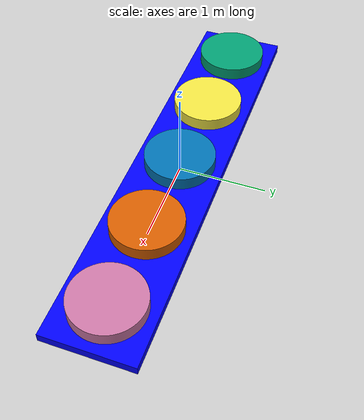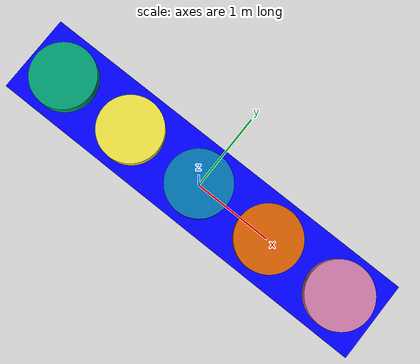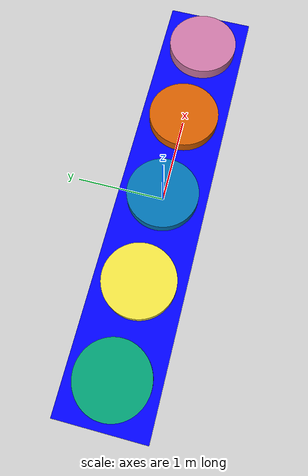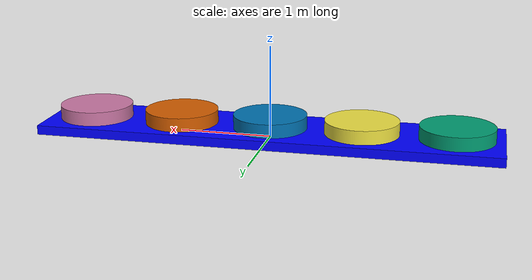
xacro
<?xml version="1.0"?>
<robot name="freezer" xmlns:xacro="http://ros.org/wiki/xacro">
  <xacro:include filename="$(find freezer_description)/urdf/freezer.sample_robot.xacro" />
  <xacro:include filename="$(find freezer_description)/urdf/freezer.ros2_control.xacro" />

  <xacro:freezer_sample_robot />
  <xacro:freezer_ros2_control name="freezer_ros2_control" />

</robot>

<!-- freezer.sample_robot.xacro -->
<robot xmlns:xacro="http://ros.org/wiki/xacro">

  <xacro:macro name="freezer_sample_robot">

    <material name="base_link_material">
      <color rgba="0 0 1 1" />
    </material>

    <link name="world" />

    <link name="base_link">
      <inertial>
        <origin xyz="0 0 0" rpy="0 0 0" />
        <mass value="0.1" />
        <inertia ixx="0.0001" ixy="0.0" ixz="0.0" iyy="0.0001" iyz="0.0" izz="0.0001" />
      </inertial>
      <visual name="base_link_visual">
        <origin xyz="0.0 0 0.05" rpy="0 0 0" />
        <geometry>
          <box size="5 1 0.1" />
        </geometry>
        <material name="base_link_material" />
      </visual>
    </link>

    <link name="link1">
      <inertial>
        <origin xyz="0 0 0" rpy="0 0 0" />
        <mass value="0.1" />
        <inertia ixx="0.0001" ixy="0.0" ixz="0.0" iyy="0.0001" iyz="0.0" izz="0.0001" />
      </inertial>
      <visual name="link1_visual">
        <origin xyz="0.0 0.0 0.0" rpy="0 0 0" />
        <geometry>
          <mesh filename="file://$(find stepit_description)/meshes/stepper_1.dae" scale="1 1 1" />
        </geometry>
      </visual>
    </link>

    <link name="link2">
      <inertial>
        <origin xyz="0 0 0" rpy="0 0 0" />
        <mass value="0.1" />
        <inertia ixx="0.0001" ixy="0.0" ixz="0.0" iyy="0.0001" iyz="0.0" izz="0.0001" />
      </inertial>
      <visual name="link2_visual">
        <origin xyz="0.0 0.0 0.0" rpy="0 0 0" />
        <geometry>
          <mesh filename="file://$(find stepit_description)/meshes/stepper_2.dae" scale="1 1 1" />
        </geometry>
      </visual>
    </link>

    <link name="link3">
      <inertial>
        <origin xyz="0 0 0" rpy="0 0 0" />
        <mass value="0.1" />
        <inertia ixx="0.0001" ixy="0.0" ixz="0.0" iyy="0.0001" iyz="0.0" izz="0.0001" />
      </inertial>
      <visual name="link3_visual">
        <origin xyz="0.0 0.0 0.0" rpy="0 0 0" />
        <geometry>
          <mesh filename="file://$(find stepit_description)/meshes/stepper_3.dae" scale="1 1 1" />
        </geometry>
      </visual>
    </link>

    <link name="link4">
      <inertial>
        <origin xyz="0 0 0" rpy="0 0 0" />
        <mass value="0.1" />
        <inertia ixx="0.0001" ixy="0.0" ixz="0.0" iyy="0.0001" iyz="0.0" izz="0.0001" />
      </inertial>
      <visual name="link4_visual">
        <origin xyz="0.0 0.0 0.0" rpy="0 0 0" />
        <geometry>
          <mesh filename="file://$(find stepit_description)/meshes/stepper_4.dae" scale="1 1 1" />
        </geometry>
      </visual>
    </link>

    <link name="link5">
      <inertial>
        <origin xyz="0 0 0" rpy="0 0 0" />
        <mass value="0.1" />
        <inertia ixx="0.0001" ixy="0.0" ixz="0.0" iyy="0.0001" iyz="0.0" izz="0.0001" />
      </inertial>
      <visual name="link5_visual">
        <origin xyz="0.0 0.0 0.0" rpy="0 0 0" />
        <geometry>
          <mesh filename="file://$(find stepit_description)/meshes/stepper_5.dae" scale="1 1 1" />
        </geometry>
      </visual>
    </link>

    <joint name="base_link_to_world" type="fixed">
      <parent link="world" />
      <child link="base_link" />
      <axis xyz="0 0 1" />
    </joint>

    <joint name="joint1" type="revolute">
      <parent link="base_link" />
      <child link="link1" />
      <origin xyz="-2.0 0.0 0.15" rpy="0 0 0" />
      <axis xyz="0 0 1" />
      <limit lower="-3.14159265358979" upper="3.14159265358979" effort="0.0" velocity="0.0" />
    </joint>

    <joint name="joint2" type="revolute">
      <parent link="base_link" />
      <child link="link2" />
      <origin xyz="-1.0 0.0 0.15" rpy="0 0 0" />
      <axis xyz="0 0 1" />
      <limit lower="-3.14159265358979" upper="3.14159265358979" effort="0.0" velocity="0.0" />
    </joint>

    <joint name="joint3" type="revolute">
      <parent link="base_link" />
      <child link="link3" />
      <origin xyz="0.0 0.0 0.15" rpy="0 0 0" />
      <axis xyz="0 0 1" />
      <limit lower="-3.14159265358979" upper="3.14159265358979" effort="0.0" velocity="0.0" />
    </joint>

    <joint name="joint4" type="revolute">
      <parent link="base_link" />
      <child link="link4" />
      <origin xyz="1.0 0.0 0.15" rpy="0 0 0" />
      <axis xyz="0 0 1" />
      <limit lower="-3.14159265358979" upper="3.14159265358979" effort="0.0" velocity="0.0" />
    </joint>

    <joint name="joint5" type="revolute">
      <parent link="base_link" />
      <child link="link5" />
      <origin xyz="2.0 0.0 0.15" rpy="0 0 0" />
      <axis xyz="0 0 1" />
      <limit lower="-3.14159265358979" upper="3.14159265358979" effort="0.0" velocity="0.0" />
    </joint>

  </xacro:macro>
</robot>
